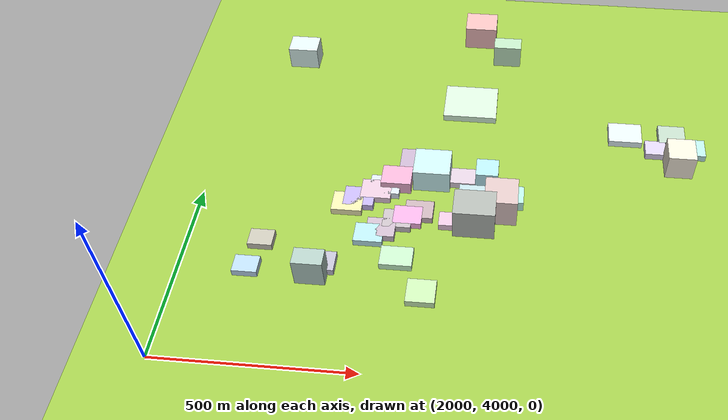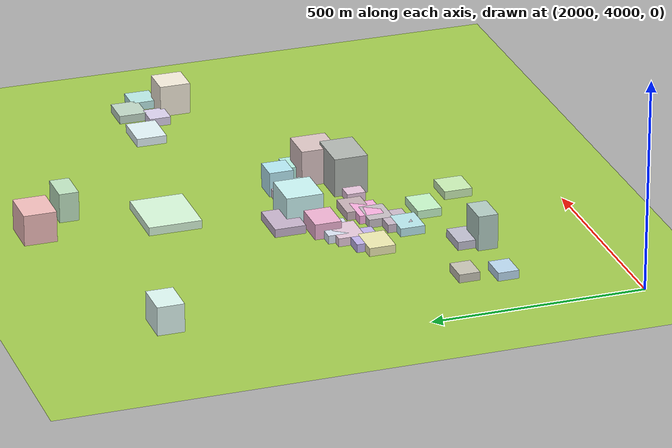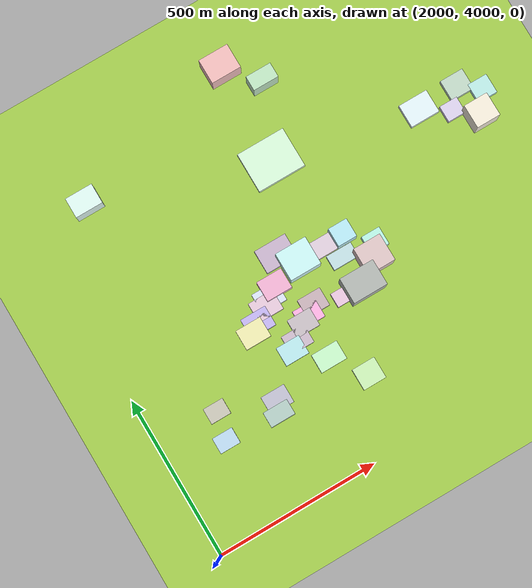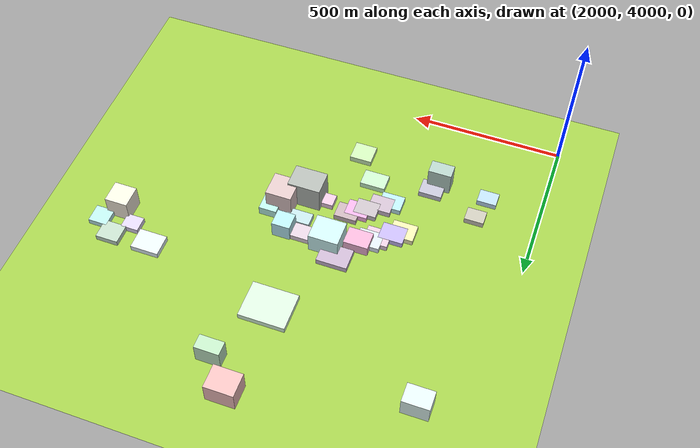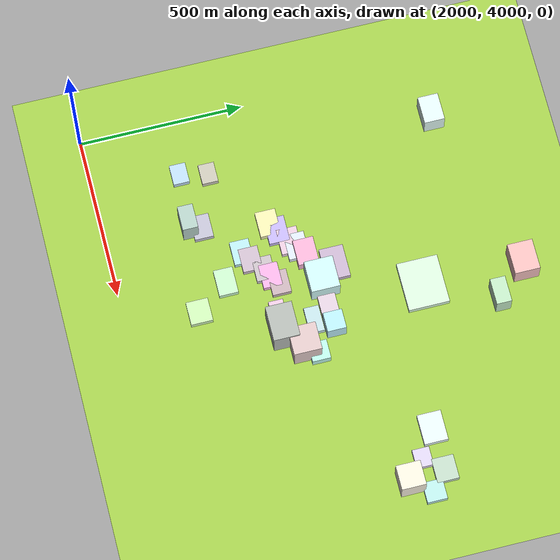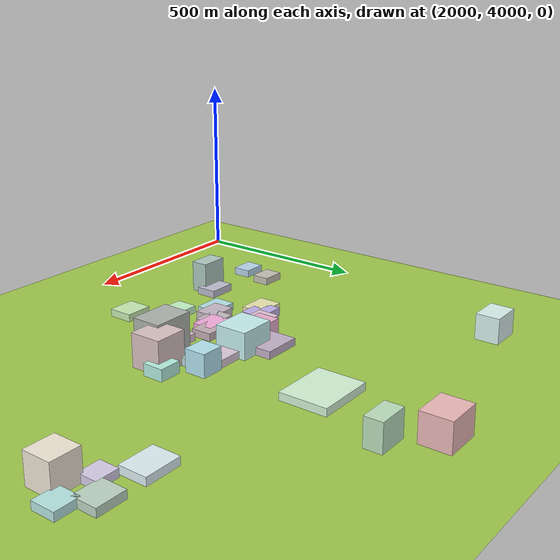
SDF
<sdf version="1.9">
 <world name="city_map">
  <model name="ground_plane">
   <static>1</static>
   <link name="link">
    <collision name="collision">
     <geometry><plane><normal>0 0 1</normal><size>11000 11000</size></plane></geometry>
    </collision>
    <visual name="visual">
     <geometry><plane><normal>0 0 1</normal><size>11000 11000</size></plane></geometry>
     <material>
      <ambient>0.551 0.712 0.210 1</ambient>
      <diffuse>0.651 0.812 0.310 1</diffuse>
      <specular>0.1 0.1 0.05 1</specular>
     </material>
    </visual>
   </link>
  </model>
  <model name="building_929349494">
   <static>1</static>
   <pose>2689.9206396754757 4890.974598503811 10.0 0 0 0</pose>
   <link name="link">
    <collision name="collision">
     <geometry><box><size>151.3818000000029 125.43460191297274 20</size></box></geometry>
    </collision>
    <visual name="visual">
     <cast_shadows>false</cast_shadows>
     <geometry><box><size>151.3818000000029 125.43460191297274 20</size></box></geometry>
     <material>
      <ambient>0.761 0.889 0.770 1</ambient>
      <diffuse>0.861 0.989 0.870 1</diffuse>
      <specular>0.258 0.297 0.261 1</specular>
      <emissive>0.01 0.01 0.01 1</emissive>
     </material>
    </visual>
   </link>
  </model>
  <model name="building_338254674">
   <static>1</static>
   <pose>2729.3895074513857 4450.870406341583 46.875279632884585 0 0 0</pose>
   <link name="link">
    <collision name="collision">
     <geometry><box><size>108.00300000020968 80.01122587544815 93.75055926576917</size></box></geometry>
    </collision>
    <visual name="visual">
     <cast_shadows>false</cast_shadows>
     <geometry><box><size>108.00300000020968 80.01122587544815 93.75055926576917</size></box></geometry>
     <material>
      <ambient>0.608 0.630 0.609 1</ambient>
      <diffuse>0.708 0.730 0.709 1</diffuse>
      <specular>0.212 0.219 0.213 1</specular>
      <emissive>0.01 0.01 0.01 1</emissive>
     </material>
    </visual>
   </link>
  </model>
  <model name="building_619989111">
   <static>1</static>
   <pose>2607.1053286225397 4601.517050705539 35.12374715888142 0 0 0</pose>
   <link name="link">
    <collision name="collision">
     <geometry><box><size>97.73550000010545 87.65395747726174 70.24749431776284</size></box></geometry>
    </collision>
    <visual name="visual">
     <cast_shadows>false</cast_shadows>
     <geometry><box><size>97.73550000010545 87.65395747726174 70.24749431776284</size></box></geometry>
     <material>
      <ambient>0.712 0.881 0.877 1</ambient>
      <diffuse>0.812 0.981 0.977 1</diffuse>
      <specular>0.244 0.294 0.293 1</specular>
      <emissive>0.01 0.01 0.01 1</emissive>
     </material>
    </visual>
   </link>
  </model>
  <model name="building_16201335">
   <static>1</static>
   <pose>2564.339080328407 4651.331966009058 10.0 0 0 0</pose>
   <link name="link">
    <collision name="collision">
     <geometry><box><size>100.93938573159672 73.25999999959265 20</size></box></geometry>
    </collision>
    <visual name="visual">
     <cast_shadows>false</cast_shadows>
     <geometry><box><size>100.93938573159672 73.25999999959265 20</size></box></geometry>
     <material>
      <ambient>0.696 0.619 0.717 1</ambient>
      <diffuse>0.796 0.719 0.817 1</diffuse>
      <specular>0.239 0.216 0.245 1</specular>
      <emissive>0.01 0.01 0.01 1</emissive>
     </material>
    </visual>
   </link>
  </model>
  <model name="building_581259804">
   <static>1</static>
   <pose>2795.3884461567022 4501.551020656861 43.71894664119664 0 0 0</pose>
   <link name="link">
    <collision name="collision">
     <geometry><box><size>85.63156857361226 84.73739999963925 87.43789328239328</size></box></geometry>
    </collision>
    <visual name="visual">
     <cast_shadows>false</cast_shadows>
     <geometry><box><size>85.63156857361226 84.73739999963925 87.43789328239328</size></box></geometry>
     <material>
      <ambient>0.783 0.689 0.686 1</ambient>
      <diffuse>0.883 0.789 0.786 1</diffuse>
      <specular>0.265 0.237 0.236 1</specular>
      <emissive>0.01 0.01 0.01 1</emissive>
     </material>
    </visual>
   </link>
  </model>
  <model name="building_516909236">
   <static>1</static>
   <pose>2700.815160548958 5195.424708533085 36.79891410458687 0 0 0</pose>
   <link name="link">
    <collision name="collision">
     <geometry><box><size>93.89490000017986 77.00336724663592 73.59782820917374</size></box></geometry>
    </collision>
    <visual name="visual">
     <cast_shadows>false</cast_shadows>
     <geometry><box><size>93.89490000017986 77.00336724663592 73.59782820917374</size></box></geometry>
     <material>
      <ambient>0.864 0.657 0.652 1</ambient>
      <diffuse>0.964 0.757 0.752 1</diffuse>
      <specular>0.289 0.227 0.225 1</specular>
      <emissive>0.01 0.01 0.01 1</emissive>
     </material>
    </visual>
   </link>
  </model>
  <model name="building_848902231">
   <static>1</static>
   <pose>3131.5266055034576 4802.964780977045 10.0 0 0 0</pose>
   <link name="link">
    <collision name="collision">
     <geometry><box><size>92.07681922722848 72.23880000027805 20</size></box></geometry>
    </collision>
    <visual name="visual">
     <cast_shadows>false</cast_shadows>
     <geometry><box><size>92.07681922722848 72.23880000027805 20</size></box></geometry>
     <material>
      <ambient>0.805 0.874 0.890 1</ambient>
      <diffuse>0.905 0.974 0.990 1</diffuse>
      <specular>0.271 0.292 0.297 1</specular>
      <emissive>0.01 0.01 0.01 1</emissive>
     </material>
    </visual>
   </link>
  </model>
  <model name="building_550608313">
   <static>1</static>
   <pose>2678.2794649829384 4601.2360570072415 10.0 0 0 0</pose>
   <link name="link">
    <collision name="collision">
     <geometry><box><size>108.92429999993425 53.34163497181932 20</size></box></geometry>
    </collision>
    <visual name="visual">
     <cast_shadows>false</cast_shadows>
     <geometry><box><size>108.92429999993425 53.34163497181932 20</size></box></geometry>
     <material>
      <ambient>0.789 0.724 0.779 1</ambient>
      <diffuse>0.889 0.824 0.879 1</diffuse>
      <specular>0.267 0.247 0.264 1</specular>
      <emissive>0.01 0.01 0.01 1</emissive>
     </material>
    </visual>
   </link>
  </model>
  <model name="building_985613502">
   <static>1</static>
   <pose>3271.878258494948 4699.139066439503 38.26717181625153 0 0 0</pose>
   <link name="link">
    <collision name="collision">
     <geometry><box><size>74.75849999975281 73.76568781018865 76.53434363250307</size></box></geometry>
    </collision>
    <visual name="visual">
     <cast_shadows>false</cast_shadows>
     <geometry><box><size>74.75849999975281 73.76568781018865 76.53434363250307</size></box></geometry>
     <material>
      <ambient>0.878 0.843 0.776 1</ambient>
      <diffuse>0.978 0.943 0.876 1</diffuse>
      <specular>0.293 0.283 0.263 1</specular>
      <emissive>0.01 0.01 0.01 1</emissive>
     </material>
    </visual>
   </link>
  </model>
  <model name="building_579259078">
   <static>1</static>
   <pose>2171.4520986191314 5051.942400226615 33.98529743249637 0 0 0</pose>
   <link name="link">
    <collision name="collision">
     <geometry><box><size>85.50043850473348 62.548499999820706 67.97059486499273</size></box></geometry>
    </collision>
    <visual name="visual">
     <cast_shadows>false</cast_shadows>
     <geometry><box><size>85.50043850473348 62.548499999820706 67.97059486499273</size></box></geometry>
     <material>
      <ambient>0.788 0.889 0.864 1</ambient>
      <diffuse>0.888 0.989 0.964 1</diffuse>
      <specular>0.266 0.297 0.289 1</specular>
      <emissive>0.01 0.01 0.01 1</emissive>
     </material>
    </visual>
   </link>
  </model>
  <model name="building_270523639">
   <static>1</static>
   <pose>2513.4219807527147 4575.3015834227335 18.775039663540213 0 0 0</pose>
   <link name="link">
    <collision name="collision">
     <geometry><box><size>80.41949999965681 62.707737182437604 37.550079327080425</size></box></geometry>
    </collision>
    <visual name="visual">
     <cast_shadows>false</cast_shadows>
     <geometry><box><size>80.41949999965681 62.707737182437604 37.550079327080425</size></box></geometry>
     <material>
      <ambient>0.859 0.613 0.744 1</ambient>
      <diffuse>0.959 0.713 0.844 1</diffuse>
      <specular>0.288 0.214 0.253 1</specular>
      <emissive>0.01 0.01 0.01 1</emissive>
     </material>
    </visual>
   </link>
  </model>
  <model name="building_893631048">
   <static>1</static>
   <pose>2462.4690786441715 4536.702716664715 10.0 0 0 0</pose>
   <link name="link">
    <collision name="collision">
     <geometry><box><size>80.36400000058563 62.41138572748223 20</size></box></geometry>
    </collision>
    <visual name="visual">
     <cast_shadows>false</cast_shadows>
     <geometry><box><size>80.36400000058563 62.41138572748223 20</size></box></geometry>
     <material>
      <ambient>0.817 0.707 0.775 1</ambient>
      <diffuse>0.917 0.807 0.875 1</diffuse>
      <specular>0.275 0.242 0.263 1</specular>
      <emissive>0.01 0.01 0.01 1</emissive>
     </material>
    </visual>
   </link>
  </model>
  <model name="building_817397324">
   <static>1</static>
   <pose>2483.7399139572785 4553.895221334768 10.0 0 0 0</pose>
   <link name="link">
    <collision name="collision">
     <geometry><box><size>80.27520000033661 62.40436056557022 20</size></box></geometry>
    </collision>
    <visual name="visual">
     <cast_shadows>false</cast_shadows>
     <geometry><box><size>80.27520000033661 62.40436056557022 20</size></box></geometry>
     <material>
      <ambient>0.775 0.814 0.876 1</ambient>
      <diffuse>0.875 0.914 0.976 1</diffuse>
      <specular>0.263 0.274 0.293 1</specular>
      <emissive>0.01 0.01 0.01 1</emissive>
     </material>
    </visual>
   </link>
  </model>
  <model name="building_671070989">
   <static>1</static>
   <pose>2392.73731429815 4488.089545354865 10.0 0 0 0</pose>
   <link name="link">
    <collision name="collision">
     <geometry><box><size>80.13089999943901 62.47943968522663 20</size></box></geometry>
    </collision>
    <visual name="visual">
     <cast_shadows>false</cast_shadows>
     <geometry><box><size>80.13089999943901 62.47943968522663 20</size></box></geometry>
     <material>
      <ambient>0.853 0.839 0.611 1</ambient>
      <diffuse>0.953 0.939 0.711 1</diffuse>
      <specular>0.286 0.282 0.213 1</specular>
      <emissive>0.01 0.01 0.01 1</emissive>
     </material>
    </visual>
   </link>
  </model>
  <model name="building_286028877">
   <static>1</static>
   <pose>2420.676490432652 4508.276997247061 10.0 0 0 0</pose>
   <link name="link">
    <collision name="collision">
     <geometry><box><size>80.38619999926766 62.18900478820942 20</size></box></geometry>
    </collision>
    <visual name="visual">
     <cast_shadows>false</cast_shadows>
     <geometry><box><size>80.38619999926766 62.18900478820942 20</size></box></geometry>
     <material>
      <ambient>0.680 0.625 0.859 1</ambient>
      <diffuse>0.780 0.725 0.959 1</diffuse>
      <specular>0.234 0.218 0.288 1</specular>
      <emissive>0.01 0.01 0.01 1</emissive>
     </material>
    </visual>
   </link>
  </model>
  <model name="building_331321950">
   <static>1</static>
   <pose>3261.8929445866656 4806.7929190436635 10.0 0 0 0</pose>
   <link name="link">
    <collision name="collision">
     <geometry><box><size>73.87189703233359 66.06719999992805 20</size></box></geometry>
    </collision>
    <visual name="visual">
     <cast_shadows>false</cast_shadows>
     <geometry><box><size>73.87189703233359 66.06719999992805 20</size></box></geometry>
     <material>
      <ambient>0.669 0.761 0.691 1</ambient>
      <diffuse>0.769 0.861 0.791 1</diffuse>
      <specular>0.231 0.258 0.237 1</specular>
      <emissive>0.01 0.01 0.01 1</emissive>
     </material>
    </visual>
   </link>
  </model>
  <model name="building_965101349">
   <static>1</static>
   <pose>2615.909836153289 4223.888946028862 10.0 0 0 0</pose>
   <link name="link">
    <collision name="collision">
     <geometry><box><size>72.36090000012751 67.0312113616494 20</size></box></geometry>
    </collision>
    <visual name="visual">
     <cast_shadows>false</cast_shadows>
     <geometry><box><size>72.36090000012751 67.0312113616494 20</size></box></geometry>
     <material>
      <ambient>0.712 0.859 0.628 1</ambient>
      <diffuse>0.812 0.959 0.728 1</diffuse>
      <specular>0.244 0.288 0.219 1</specular>
      <emissive>0.01 0.01 0.01 1</emissive>
     </material>
    </visual>
   </link>
  </model>
  <model name="building_360890980">
   <static>1</static>
   <pose>2543.188991505451 4322.118898855772 10.0 0 0 0</pose>
   <link name="link">
    <collision name="collision">
     <geometry><box><size>82.70584915411666 58.530300000185775 20</size></box></geometry>
    </collision>
    <visual name="visual">
     <cast_shadows>false</cast_shadows>
     <geometry><box><size>82.70584915411666 58.530300000185775 20</size></box></geometry>
     <material>
      <ambient>0.697 0.887 0.705 1</ambient>
      <diffuse>0.797 0.987 0.805 1</diffuse>
      <specular>0.239 0.296 0.242 1</specular>
      <emissive>0.01 0.01 0.01 1</emissive>
     </material>
    </visual>
   </link>
  </model>
  <model name="building_830214879">
   <static>1</static>
   <pose>2491.7624481095463 4409.771252020971 10.0 0 0 0</pose>
   <link name="link">
    <collision name="collision">
     <geometry><box><size>74.34779999968555 59.05915768568648 20</size></box></geometry>
    </collision>
    <visual name="visual">
     <cast_shadows>false</cast_shadows>
     <geometry><box><size>74.34779999968555 59.05915768568648 20</size></box></geometry>
     <material>
      <ambient>0.715 0.646 0.711 1</ambient>
      <diffuse>0.815 0.746 0.811 1</diffuse>
      <specular>0.244 0.224 0.243 1</specular>
      <emissive>0.01 0.01 0.01 1</emissive>
     </material>
    </visual>
   </link>
  </model>
  <model name="building_590646366">
   <static>1</static>
   <pose>2463.3837752571376 4389.6871673472415 10.0 0 0 0</pose>
   <link name="link">
    <collision name="collision">
     <geometry><box><size>74.36999999994498 58.418349636672765 20</size></box></geometry>
    </collision>
    <visual name="visual">
     <cast_shadows>false</cast_shadows>
     <geometry><box><size>74.36999999994498 58.418349636672765 20</size></box></geometry>
     <material>
      <ambient>0.640 0.824 0.844 1</ambient>
      <diffuse>0.740 0.924 0.944 1</diffuse>
      <specular>0.222 0.277 0.283 1</specular>
      <emissive>0.01 0.01 0.01 1</emissive>
     </material>
    </visual>
   </link>
  </model>
  <model name="building_109834319">
   <static>1</static>
   <pose>2356.0783550466986 4292.695710400702 10.0 0 0 0</pose>
   <link name="link">
    <collision name="collision">
     <geometry><box><size>75.16919999982008 57.542282534613996 20</size></box></geometry>
    </collision>
    <visual name="visual">
     <cast_shadows>false</cast_shadows>
     <geometry><box><size>75.16919999982008 57.542282534613996 20</size></box></geometry>
     <material>
      <ambient>0.666 0.661 0.731 1</ambient>
      <diffuse>0.766 0.761 0.831 1</diffuse>
      <specular>0.230 0.228 0.249 1</specular>
      <emissive>0.01 0.01 0.01 1</emissive>
     </material>
    </visual>
   </link>
  </model>
  <model name="building_519803654">
   <static>1</static>
   <pose>2530.1040007455267 4441.853855801448 10.0 0 0 0</pose>
   <link name="link">
    <collision name="collision">
     <geometry><box><size>74.3811000000747 57.8104824185967 20</size></box></geometry>
    </collision>
    <visual name="visual">
     <cast_shadows>false</cast_shadows>
     <geometry><box><size>74.3811000000747 57.8104824185967 20</size></box></geometry>
     <material>
      <ambient>0.697 0.662 0.685 1</ambient>
      <diffuse>0.797 0.762 0.785 1</diffuse>
      <specular>0.239 0.229 0.236 1</specular>
      <emissive>0.01 0.01 0.01 1</emissive>
     </material>
    </visual>
   </link>
  </model>
  <model name="building_954106803">
   <static>1</static>
   <pose>2555.8529647986047 4455.675368892895 10.0 0 0 0</pose>
   <link name="link">
    <collision name="collision">
     <geometry><box><size>74.35889999981526 57.7764870988783 20</size></box></geometry>
    </collision>
    <visual name="visual">
     <cast_shadows>false</cast_shadows>
     <geometry><box><size>74.35889999981526 57.7764870988783 20</size></box></geometry>
     <material>
      <ambient>0.899 0.608 0.802 1</ambient>
      <diffuse>0.999 0.708 0.902 1</diffuse>
      <specular>0.300 0.212 0.271 1</specular>
      <emissive>0.01 0.01 0.01 1</emissive>
     </material>
    </visual>
   </link>
  </model>
  <model name="building_545942067">
   <static>1</static>
   <pose>2583.9147137479713 4476.530112813942 10.0 0 0 0</pose>
   <link name="link">
    <collision name="collision">
     <geometry><box><size>73.7262000003085 57.46582208078294 20</size></box></geometry>
    </collision>
    <visual name="visual">
     <cast_shadows>false</cast_shadows>
     <geometry><box><size>73.7262000003085 57.46582208078294 20</size></box></geometry>
     <material>
      <ambient>0.697 0.609 0.635 1</ambient>
      <diffuse>0.797 0.709 0.735 1</diffuse>
      <specular>0.239 0.213 0.221 1</specular>
      <emissive>0.01 0.01 0.01 1</emissive>
     </material>
    </visual>
   </link>
  </model>
  <model name="building_331218168">
   <static>1</static>
   <pose>3319.0273385937044 4760.572827142745 10.0 0 0 0</pose>
   <link name="link">
    <collision name="collision">
     <geometry><box><size>62.22660000000246 60.843070058250944 20</size></box></geometry>
    </collision>
    <visual name="visual">
     <cast_shadows>false</cast_shadows>
     <geometry><box><size>62.22660000000246 60.843070058250944 20</size></box></geometry>
     <material>
      <ambient>0.645 0.833 0.817 1</ambient>
      <diffuse>0.745 0.933 0.917 1</diffuse>
      <specular>0.223 0.280 0.275 1</specular>
      <emissive>0.01 0.01 0.01 1</emissive>
     </material>
    </visual>
   </link>
  </model>
  <model name="building_679433580">
   <static>1</static>
   <pose>2785.716333349027 5102.331175485078 35.25983195648695 0 0 0</pose>
   <link name="link">
    <collision name="collision">
     <geometry><box><size>80.30849999993706 46.16383804677106 70.5196639129739</size></box></geometry>
    </collision>
    <visual name="visual">
     <cast_shadows>false</cast_shadows>
     <geometry><box><size>80.30849999993706 46.16383804677106 70.5196639129739</size></box></geometry>
     <material>
      <ambient>0.666 0.815 0.679 1</ambient>
      <diffuse>0.766 0.915 0.779 1</diffuse>
      <specular>0.230 0.274 0.234 1</specular>
      <emissive>0.01 0.01 0.01 1</emissive>
     </material>
    </visual>
   </link>
  </model>
  <model name="building_58159719">
   <static>1</static>
   <pose>2722.741452460572 4548.359416492925 10.0 0 0 0</pose>
   <link name="link">
    <collision name="collision">
     <geometry><box><size>80.72489732479409 45.84300000019681 20</size></box></geometry>
    </collision>
    <visual name="visual">
     <cast_shadows>false</cast_shadows>
     <geometry><box><size>80.72489732479409 45.84300000019681 20</size></box></geometry>
     <material>
      <ambient>0.675 0.790 0.808 1</ambient>
      <diffuse>0.775 0.890 0.908 1</diffuse>
      <specular>0.233 0.267 0.272 1</specular>
      <emissive>0.01 0.01 0.01 1</emissive>
     </material>
    </visual>
   </link>
  </model>
  <model name="building_912727638">
   <static>1</static>
   <pose>2678.1823723345033 4450.842880149876 10.0 0 0 0</pose>
   <link name="link">
    <collision name="collision">
     <geometry><box><size>81.3629999996408 44.29396550302897 20</size></box></geometry>
    </collision>
    <visual name="visual">
     <cast_shadows>false</cast_shadows>
     <geometry><box><size>81.3629999996408 44.29396550302897 20</size></box></geometry>
     <material>
      <ambient>0.828 0.694 0.788 1</ambient>
      <diffuse>0.928 0.794 0.888 1</diffuse>
      <specular>0.278 0.238 0.266 1</specular>
      <emissive>0.01 0.01 0.01 1</emissive>
     </material>
    </visual>
   </link>
  </model>
  <model name="building_359732873">
   <static>1</static>
   <pose>2339.8122351682337 4255.870915896118 42.07027879785103 0 0 0</pose>
   <link name="link">
    <collision name="collision">
     <geometry><box><size>76.17460407034352 46.93080000028971 84.14055759570206</size></box></geometry>
    </collision>
    <visual name="visual">
     <cast_shadows>false</cast_shadows>
     <geometry><box><size>76.17460407034352 46.93080000028971 84.14055759570206</size></box></geometry>
     <material>
      <ambient>0.613 0.716 0.682 1</ambient>
      <diffuse>0.713 0.816 0.782 1</diffuse>
      <specular>0.214 0.245 0.235 1</specular>
      <emissive>0.01 0.01 0.01 1</emissive>
     </material>
    </visual>
   </link>
  </model>
  <model name="building_629360416">
   <static>1</static>
   <pose>2753.6096025850998 4602.960319670983 29.602675198937014 0 0 0</pose>
   <link name="link">
    <collision name="collision">
     <geometry><box><size>59.96779334199487 57.80880000042998 59.20535039787403</size></box></geometry>
    </collision>
    <visual name="visual">
     <cast_shadows>false</cast_shadows>
     <geometry><box><size>59.96779334199487 57.80880000042998 59.20535039787403</size></box></geometry>
     <material>
      <ambient>0.631 0.831 0.876 1</ambient>
      <diffuse>0.731 0.931 0.976 1</diffuse>
      <specular>0.219 0.279 0.293 1</specular>
      <emissive>0.01 0.01 0.01 1</emissive>
     </material>
    </visual>
   </link>
  </model>
  <model name="building_925573559">
   <static>1</static>
   <pose>2824.972779608115 4538.905423178177 15.45655925502273 0 0 0</pose>
   <link name="link">
    <collision name="collision">
     <geometry><box><size>58.7135291055697 56.42129999998957 30.91311851004546</size></box></geometry>
    </collision>
    <visual name="visual">
     <cast_shadows>false</cast_shadows>
     <geometry><box><size>58.7135291055697 56.42129999998957 30.91311851004546</size></box></geometry>
     <material>
      <ambient>0.639 0.872 0.811 1</ambient>
      <diffuse>0.739 0.972 0.911 1</diffuse>
      <specular>0.222 0.292 0.273 1</specular>
      <emissive>0.01 0.01 0.01 1</emissive>
     </material>
    </visual>
   </link>
  </model>
  <model name="building_944157141">
   <static>1</static>
   <pose>2174.165709573252 4267.175733439008 10.0 0 0 0</pose>
   <link name="link">
    <collision name="collision">
     <geometry><box><size>63.4337943212339 49.2507000005844 20</size></box></geometry>
    </collision>
    <visual name="visual">
     <cast_shadows>false</cast_shadows>
     <geometry><box><size>63.4337943212339 49.2507000005844 20</size></box></geometry>
     <material>
      <ambient>0.646 0.767 0.855 1</ambient>
      <diffuse>0.746 0.867 0.955 1</diffuse>
      <specular>0.224 0.260 0.287 1</specular>
      <emissive>0.01 0.01 0.01 1</emissive>
     </material>
    </visual>
   </link>
  </model>
  <model name="building_362661775">
   <static>1</static>
   <pose>2193.3865208575767 4351.612218735708 10.0 0 0 0</pose>
   <link name="link">
    <collision name="collision">
     <geometry><box><size>62.959200000676674 48.809477028653525 20</size></box></geometry>
    </collision>
    <visual name="visual">
     <cast_shadows>false</cast_shadows>
     <geometry><box><size>62.959200000676674 48.809477028653525 20</size></box></geometry>
     <material>
      <ambient>0.695 0.683 0.626 1</ambient>
      <diffuse>0.795 0.783 0.726 1</diffuse>
      <specular>0.238 0.235 0.218 1</specular>
      <emissive>0.01 0.01 0.01 1</emissive>
     </material>
    </visual>
   </link>
  </model>
  <model name="building_683404809">
   <static>1</static>
   <pose>3213.299028213979 4751.700676607923 10.0 0 0 0</pose>
   <link name="link">
    <collision name="collision">
     <geometry><box><size>57.03755854171072 51.1376999997637 20</size></box></geometry>
    </collision>
    <visual name="visual">
     <cast_shadows>false</cast_shadows>
     <geometry><box><size>57.03755854171072 51.1376999997637 20</size></box></geometry>
     <material>
      <ambient>0.776 0.738 0.846 1</ambient>
      <diffuse>0.876 0.838 0.946 1</diffuse>
      <specular>0.263 0.251 0.284 1</specular>
      <emissive>0.01 0.01 0.01 1</emissive>
     </material>
    </visual>
   </link>
  </model>
 </world>
</sdf>
